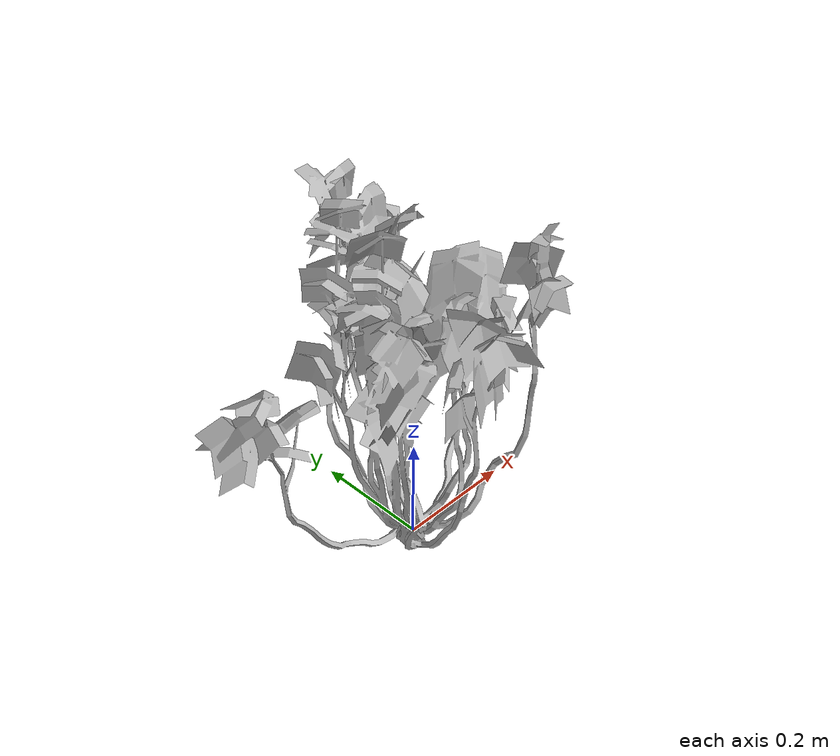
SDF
<?xml version="1.0" ?>
<sdf version="1.5">
  <model name="Bush 4 Tiny">
     <static>true</static>
    <pose frame=''>0 0 0 1.57079 0 0</pose>
    <link name="link">
      <pose frame=''>0 0 0 0 0 0</pose>
      <collision name="collision">
        <geometry>
          <mesh>
            <scale>1 1 1</scale>
            <uri>model://bush_4/meshes/bush_4.obj</uri>
          </mesh>
        </geometry>
        <surface>
          <contact>
           <ode>
            <kp>1.0</kp>
            <kd>0.01</kd>
            <max_vel>0.0</max_vel>
            <min_depth>0.001</min_depth>
           </ode>
          </contact>
          <friction>
           <ode>
            <mu>0.9</mu>
            <mu2>0.9</mu2>
           </ode>
          </friction>
        </surface>
      </collision>
      <visual name="visual">
        <geometry>
          <mesh>

            <scale>1 1 1</scale>
            <uri>model://bush_4/meshes/bush_4.obj</uri>
          </mesh>
        </geometry>
      </visual>
    </link>
  </model>
</sdf>
